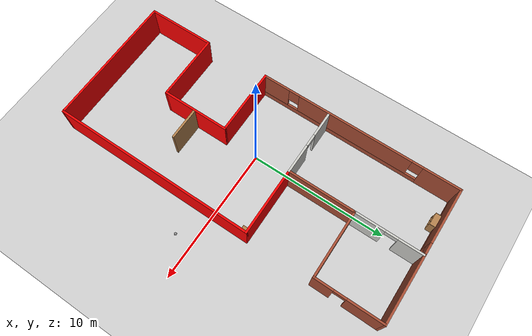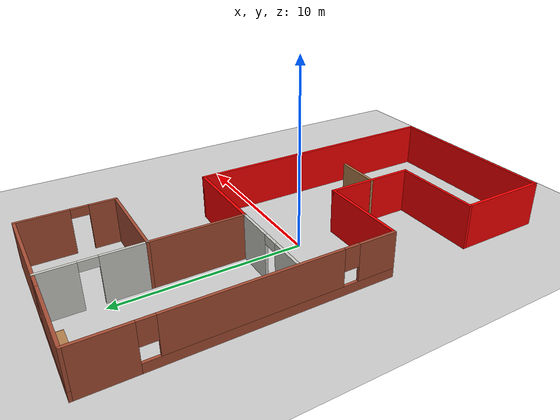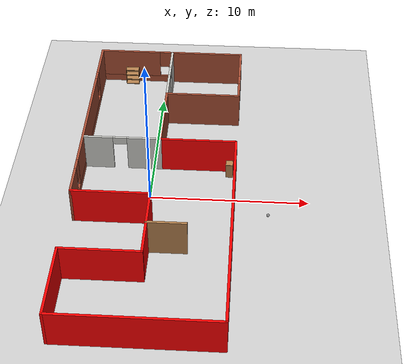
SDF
<sdf version="1.6">
 <world name="default">
  <plugin name="hello" filename="libhello.so"/>
  <light name="sun" type="directional">
   <pose>0 0 10 0 -0 0</pose>
   <diffuse>0.8 0.8 0.8 1</diffuse>
   <specular>0.1 0.1 0.1 1</specular>
   <attenuation>
    <range>1000</range>
    <constant>0.9</constant>
    <linear>0.01</linear>
    <quadratic>0.001</quadratic>
   </attenuation>
   <direction>-0.5 0.5 -1</direction>
  </light>
  <model name="ground_plane">
   <static>1</static>
   <link name="link">
    <collision name="collision">
     <geometry><plane><normal>0 0 1</normal><size>100 100</size></plane></geometry>
     <surface><friction><ode><mu>100</mu><mu2>50</mu2></ode></friction></surface>
    </collision>
    <visual name="visual">
     <cast_shadows>0</cast_shadows>
     <geometry><plane><normal>0 0 1</normal><size>100 100</size></plane></geometry>
     <material>
      <script><uri>file://media/materials/scripts/gazebo.material</uri><name>Gazebo/Grey</name></script>
     </material>
    </visual>
   </link>
  </model>
  <gravity>0 0 -9.8</gravity>
  <magnetic_field>6e-06 2.3e-05 -4.2e-05</magnetic_field>
  <atmosphere type="adiabatic"/>
  <physics name="default_physics" default="0" type="ode">
   <max_step_size>0.001</max_step_size>
   <real_time_factor>1</real_time_factor>
   <real_time_update_rate>1000</real_time_update_rate>
  </physics>
  <scene><ambient>0.4 0.4 0.4 1</ambient><background>0.7 0.7 0.7 1</background><shadows>1</shadows></scene>
  <spherical_coordinates>
   <surface_model>EARTH_WGS84</surface_model>
   <latitude_deg>0</latitude_deg>
   <longitude_deg>0</longitude_deg>
   <elevation>0</elevation>
   <heading_deg>0</heading_deg>
  </spherical_coordinates>
  <model name="P1Building">
   <pose>0.35783 0.28156 0 0 -0 0</pose>
   <link name="Wall_14">
    <collision name="Wall_14_Collision">
     <geometry><box><size>5 0.15 2.5</size></box></geometry>
     <pose>0 0 1.25 0 -0 0</pose>
    </collision>
    <visual name="Wall_14_Visual">
     <pose>0 0 1.25 0 -0 0</pose>
     <geometry><box><size>5 0.15 2.5</size></box></geometry>
     <material>
      <script><uri>file://media/materials/scripts/gazebo.material</uri><name>Gazebo/Grey</name></script>
      <ambient>1 0 0 1</ambient>
     </material>
     <meta><layer>0</layer></meta>
    </visual>
    <pose>2.5 2.575 0 0 -0 0</pose>
   </link>
   <link name="Wall_2">
    <collision name="Wall_2_Collision">
     <geometry><box><size>5 0.15 2.5</size></box></geometry>
     <pose>0 0 1.25 0 -0 0</pose>
    </collision>
    <visual name="Wall_2_Visual">
     <pose>0 0 1.25 0 -0 0</pose>
     <geometry><box><size>5 0.15 2.5</size></box></geometry>
     <material>
      <script><uri>file://media/materials/scripts/gazebo.material</uri><name>Gazebo/Bricks</name></script>
      <ambient>1 1 1 1</ambient>
     </material>
     <meta><layer>0</layer></meta>
    </visual>
    <pose>2.5 7.425 0 0 -0 3.14159</pose>
   </link>
   <link name="Wall_47">
    <collision name="Wall_47_Collision">
     <geometry><box><size>15 0.15 2.5</size></box></geometry>
     <pose>0 0 1.25 0 -0 0</pose>
    </collision>
    <visual name="Wall_47_Visual">
     <pose>0 0 1.25 0 -0 0</pose>
     <geometry><box><size>15 0.15 2.5</size></box></geometry>
     <material>
      <script><uri>file://media/materials/scripts/gazebo.material</uri><name>Gazebo/Grey</name></script>
      <ambient>1 0 0 1</ambient>
     </material>
     <meta><layer>0</layer></meta>
    </visual>
    <pose>4.925 -4.85 0 0 0 -1.5708</pose>
   </link>
   <link name="Wall_49">
    <collision name="Wall_49_Collision">
     <geometry><box><size>10 0.15 2.5</size></box></geometry>
     <pose>0 0 1.25 0 -0 0</pose>
    </collision>
    <visual name="Wall_49_Visual">
     <pose>0 0 1.25 0 -0 0</pose>
     <geometry><box><size>10 0.15 2.5</size></box></geometry>
     <material>
      <script><uri>file://media/materials/scripts/gazebo.material</uri><name>Gazebo/Grey</name></script>
      <ambient>1 0 0 1</ambient>
     </material>
     <meta><layer>0</layer></meta>
    </visual>
    <pose>0 -12.275 0 0 -0 3.14159</pose>
   </link>
   <link name="Wall_57">
    <pose>4.925 9.85 0 0 -0 1.5708</pose>
    <visual name="Wall_57_Visual_0">
     <pose>-1.77155 0 1.25 0 -0 0</pose>
     <geometry><box><size>1.45691 0.15 2.5</size></box></geometry>
     <material>
      <script><uri>file://media/materials/scripts/gazebo.material</uri><name>Gazebo/Bricks</name></script>
      <ambient>1 1 1 1</ambient>
     </material>
     <meta><layer>0</layer></meta>
    </visual>
    <collision name="Wall_57_Collision_0">
     <geometry><box><size>1.45691 0.15 2.5</size></box></geometry>
     <pose>-1.77155 0 1.25 0 -0 0</pose>
    </collision>
    <visual name="Wall_57_Visual_1">
     <pose>1.17845 0 1.25 0 -0 0</pose>
     <geometry><box><size>2.64309 0.15 2.5</size></box></geometry>
     <material>
      <script><uri>file://media/materials/scripts/gazebo.material</uri><name>Gazebo/Bricks</name></script>
      <ambient>1 1 1 1</ambient>
     </material>
     <meta><layer>0</layer></meta>
    </visual>
    <collision name="Wall_57_Collision_1">
     <geometry><box><size>2.64309 0.15 2.5</size></box></geometry>
     <pose>1.17845 0 1.25 0 -0 0</pose>
    </collision>
    <visual name="Wall_57_Visual_2">
     <pose>-0.593093 0 2.25 0 -0 0</pose>
     <geometry><box><size>0.9 0.15 0.5</size></box></geometry>
     <material>
      <script><uri>file://media/materials/scripts/gazebo.material</uri><name>Gazebo/Bricks</name></script>
      <ambient>1 1 1 1</ambient>
     </material>
     <meta><layer>0</layer></meta>
    </visual>
    <collision name="Wall_57_Collision_2">
     <geometry><box><size>0.9 0.15 0.5</size></box></geometry>
     <pose>-0.593093 0 2.25 0 -0 0</pose>
    </collision>
   </link>
   <link name="Wall_59">
    <pose>0 12.275 0 0 -0 3.14159</pose>
    <visual name="Wall_59_Visual_0">
     <pose>-2.48916 0 1.25 0 -0 0</pose>
     <geometry><box><size>5.02167 0.15 2.5</size></box></geometry>
     <material>
      <script><uri>file://media/materials/scripts/gazebo.material</uri><name>Gazebo/Bricks</name></script>
      <ambient>1 1 1 1</ambient>
     </material>
     <meta><layer>0</layer></meta>
    </visual>
    <collision name="Wall_59_Collision_0">
     <geometry><box><size>5.02167 0.15 2.5</size></box></geometry>
     <pose>-2.48916 0 1.25 0 -0 0</pose>
    </collision>
    <visual name="Wall_59_Visual_1">
     <pose>2.51084 0 0.25 0 -0 0</pose>
     <geometry><box><size>4.97833 0.15 0.5</size></box></geometry>
     <material>
      <script><uri>file://media/materials/scripts/gazebo.material</uri><name>Gazebo/Bricks</name></script>
      <ambient>1 1 1 1</ambient>
     </material>
     <meta><layer>0</layer></meta>
    </visual>
    <collision name="Wall_59_Collision_1">
     <geometry><box><size>4.97833 0.15 0.5</size></box></geometry>
     <pose>2.51084 0 0.25 0 -0 0</pose>
    </collision>
    <visual name="Wall_59_Visual_2">
     <pose>2.91084 0 1.5 0 -0 0</pose>
     <geometry><box><size>4.17833 0.15 2</size></box></geometry>
     <material>
      <script><uri>file://media/materials/scripts/gazebo.material</uri><name>Gazebo/Bricks</name></script>
      <ambient>1 1 1 1</ambient>
     </material>
     <meta><layer>0</layer></meta>
    </visual>
    <collision name="Wall_59_Collision_2">
     <geometry><box><size>4.17833 0.15 2</size></box></geometry>
     <pose>2.91084 0 1.5 0 -0 0</pose>
    </collision>
    <visual name="Wall_59_Visual_3">
     <pose>0.421672 0 1.9 0 -0 0</pose>
     <geometry><box><size>0.8 0.15 1.2</size></box></geometry>
     <material>
      <script><uri>file://media/materials/scripts/gazebo.material</uri><name>Gazebo/Bricks</name></script>
      <ambient>1 1 1 1</ambient>
     </material>
     <meta><layer>0</layer></meta>
    </visual>
    <collision name="Wall_59_Collision_3">
     <geometry><box><size>0.8 0.15 1.2</size></box></geometry>
     <pose>0.421672 0 1.9 0 -0 0</pose>
    </collision>
   </link>
   <link name="Wall_6">
    <collision name="Wall_6_Collision">
     <geometry><box><size>5 0.15 2.5</size></box></geometry>
     <pose>0 0 1.25 0 -0 0</pose>
    </collision>
    <visual name="Wall_6_Visual">
     <pose>0 0 1.25 0 -0 0</pose>
     <geometry><box><size>5 0.15 2.5</size></box></geometry>
     <material>
      <script><uri>file://media/materials/scripts/gazebo.material</uri><name>Gazebo/Bricks</name></script>
      <ambient>1 1 1 1</ambient>
     </material>
     <meta><layer>0</layer></meta>
    </visual>
    <pose>0.075 5 0 0 0 -1.5708</pose>
   </link>
   <link name="Wall_60">
    <pose>-4.925 4.85 0 0 0 -1.5708</pose>
    <visual name="Wall_60_Visual_0">
     <pose>-6.12564 0 1.25 0 -0 0</pose>
     <geometry><box><size>2.74872 0.15 2.5</size></box></geometry>
     <material>
      <script><uri>file://media/materials/scripts/gazebo.material</uri><name>Gazebo/Bricks</name></script>
      <ambient>1 0 0 1</ambient>
     </material>
     <meta><layer>0</layer></meta>
    </visual>
    <collision name="Wall_60_Collision_0">
     <geometry><box><size>2.74872 0.15 2.5</size></box></geometry>
     <pose>-6.12564 0 1.25 0 -0 0</pose>
    </collision>
    <visual name="Wall_60_Visual_1">
     <pose>1.37436 0 0.25 0 -0 0</pose>
     <geometry><box><size>12.2513 0.15 0.5</size></box></geometry>
     <material>
      <script><uri>file://media/materials/scripts/gazebo.material</uri><name>Gazebo/Bricks</name></script>
      <ambient>1 0 0 1</ambient>
     </material>
     <meta><layer>0</layer></meta>
    </visual>
    <collision name="Wall_60_Collision_1">
     <geometry><box><size>12.2513 0.15 0.5</size></box></geometry>
     <pose>1.37436 0 0.25 0 -0 0</pose>
    </collision>
    <visual name="Wall_60_Visual_2">
     <pose>0.338827 0 1.5 0 -0 0</pose>
     <geometry><box><size>8.58021 0.15 2</size></box></geometry>
     <material>
      <script><uri>file://media/materials/scripts/gazebo.material</uri><name>Gazebo/Bricks</name></script>
      <ambient>1 0 0 1</ambient>
     </material>
     <meta><layer>0</layer></meta>
    </visual>
    <collision name="Wall_60_Collision_2">
     <geometry><box><size>8.58021 0.15 2</size></box></geometry>
     <pose>0.338827 0 1.5 0 -0 0</pose>
    </collision>
    <visual name="Wall_60_Visual_3">
     <pose>6.46447 0 1.5 0 -0 0</pose>
     <geometry><box><size>2.07107 0.15 2</size></box></geometry>
     <material>
      <script><uri>file://media/materials/scripts/gazebo.material</uri><name>Gazebo/Bricks</name></script>
      <ambient>1 0 0 1</ambient>
     </material>
     <meta><layer>0</layer></meta>
    </visual>
    <collision name="Wall_60_Collision_3">
     <geometry><box><size>2.07107 0.15 2</size></box></geometry>
     <pose>6.46447 0 1.5 0 -0 0</pose>
    </collision>
    <visual name="Wall_60_Visual_4">
     <pose>-4.35128 0 1.9 0 -0 0</pose>
     <geometry><box><size>0.8 0.15 1.2</size></box></geometry>
     <material>
      <script><uri>file://media/materials/scripts/gazebo.material</uri><name>Gazebo/Bricks</name></script>
      <ambient>1 0 0 1</ambient>
     </material>
     <meta><layer>0</layer></meta>
    </visual>
    <collision name="Wall_60_Collision_4">
     <geometry><box><size>0.8 0.15 1.2</size></box></geometry>
     <pose>-4.35128 0 1.9 0 -0 0</pose>
    </collision>
    <visual name="Wall_60_Visual_5">
     <pose>5.02893 0 1.9 0 -0 0</pose>
     <geometry><box><size>0.8 0.15 1.2</size></box></geometry>
     <material>
      <script><uri>file://media/materials/scripts/gazebo.material</uri><name>Gazebo/Bricks</name></script>
      <ambient>1 0 0 1</ambient>
     </material>
     <meta><layer>0</layer></meta>
    </visual>
    <collision name="Wall_60_Collision_5">
     <geometry><box><size>0.8 0.15 1.2</size></box></geometry>
     <pose>5.02893 0 1.9 0 -0 0</pose>
    </collision>
   </link>
   <link name="Wall_63">
    <collision name="Wall_63_Collision">
     <geometry><box><size>5 0.15 2.5</size></box></geometry>
     <pose>0 0 1.25 0 -0 0</pose>
    </collision>
    <visual name="Wall_63_Visual">
     <pose>0 0 1.25 0 -0 0</pose>
     <geometry><box><size>5 0.15 2.5</size></box></geometry>
     <material>
      <script><uri>file://media/materials/scripts/gazebo.material</uri><name>Gazebo/Grey</name></script>
      <ambient>1 0 0 1</ambient>
     </material>
     <meta><layer>0</layer></meta>
    </visual>
    <pose>-2.5 -2.575 0 0 -0 0</pose>
   </link>
   <link name="Wall_65">
    <collision name="Wall_65_Collision">
     <geometry><box><size>5 0.15 2.5</size></box></geometry>
     <pose>0 0 1.25 0 -0 0</pose>
    </collision>
    <visual name="Wall_65_Visual">
     <pose>0 0 1.25 0 -0 0</pose>
     <geometry><box><size>5 0.15 2.5</size></box></geometry>
     <material>
      <script><uri>file://media/materials/scripts/gazebo.material</uri><name>Gazebo/Grey</name></script>
      <ambient>1 0 0 1</ambient>
     </material>
     <meta><layer>0</layer></meta>
    </visual>
    <pose>-0.075 -5 0 0 0 -1.5708</pose>
   </link>
   <link name="Wall_71">
    <collision name="Wall_71_Collision">
     <geometry><box><size>5 0.15 2.5</size></box></geometry>
     <pose>0 0 1.25 0 -0 0</pose>
    </collision>
    <visual name="Wall_71_Visual">
     <pose>0 0 1.25 0 -0 0</pose>
     <geometry><box><size>5 0.15 2.5</size></box></geometry>
     <material>
      <script><uri>file://media/materials/scripts/gazebo.material</uri><name>Gazebo/Grey</name></script>
      <ambient>1 0 0 1</ambient>
     </material>
     <meta><layer>0</layer></meta>
    </visual>
    <pose>-2.5 -7.425 0 0 -0 3.14159</pose>
   </link>
   <link name="Wall_72">
    <collision name="Wall_72_Collision">
     <geometry><box><size>5 0.15 2.5</size></box></geometry>
     <pose>0 0 1.25 0 -0 0</pose>
    </collision>
    <visual name="Wall_72_Visual">
     <pose>0 0 1.25 0 -0 0</pose>
     <geometry><box><size>5 0.15 2.5</size></box></geometry>
     <material>
      <script><uri>file://media/materials/scripts/gazebo.material</uri><name>Gazebo/Grey</name></script>
      <ambient>1 0 0 1</ambient>
     </material>
     <meta><layer>0</layer></meta>
    </visual>
    <pose>-4.925 -9.85 0 0 0 -1.5708</pose>
   </link>
   <link name="Wall_74">
    <pose>0.075 9.85 0 0 -0 1.5708</pose>
    <visual name="Wall_74_Visual_0">
     <pose>-1.37739 0 1.25 0 -0 0</pose>
     <geometry><box><size>2.24523 0.15 2.5</size></box></geometry>
     <material>
      <script><uri>file://media/materials/scripts/gazebo.material</uri><name>Gazebo/CeilingTiled</name></script>
      <ambient>1 1 1 1</ambient>
     </material>
     <meta><layer>0</layer></meta>
    </visual>
    <collision name="Wall_74_Collision_0">
     <geometry><box><size>2.24523 0.15 2.5</size></box></geometry>
     <pose>-1.37739 0 1.25 0 -0 0</pose>
    </collision>
    <visual name="Wall_74_Visual_1">
     <pose>1.57261 0 1.25 0 -0 0</pose>
     <geometry><box><size>1.85477 0.15 2.5</size></box></geometry>
     <material>
      <script><uri>file://media/materials/scripts/gazebo.material</uri><name>Gazebo/CeilingTiled</name></script>
      <ambient>1 1 1 1</ambient>
     </material>
     <meta><layer>0</layer></meta>
    </visual>
    <collision name="Wall_74_Collision_1">
     <geometry><box><size>1.85477 0.15 2.5</size></box></geometry>
     <pose>1.57261 0 1.25 0 -0 0</pose>
    </collision>
    <visual name="Wall_74_Visual_2">
     <pose>0.195227 0 2.25 0 -0 0</pose>
     <geometry><box><size>0.9 0.15 0.5</size></box></geometry>
     <material>
      <script><uri>file://media/materials/scripts/gazebo.material</uri><name>Gazebo/CeilingTiled</name></script>
      <ambient>1 1 1 1</ambient>
     </material>
     <meta><layer>0</layer></meta>
    </visual>
    <collision name="Wall_74_Collision_2">
     <geometry><box><size>0.9 0.15 0.5</size></box></geometry>
     <pose>0.195227 0 2.25 0 -0 0</pose>
    </collision>
   </link>
   <link name="Wall_80">
    <pose>-2.35 2.575 0 0 -0 3.14159</pose>
    <visual name="Wall_80_Visual_0">
     <pose>-1.38194 0 1.25 0 -0 0</pose>
     <geometry><box><size>2.23611 0.15 2.5</size></box></geometry>
     <material>
      <script><uri>file://media/materials/scripts/gazebo.material</uri><name>Gazebo/CeilingTiled</name></script>
      <ambient>1 1 1 1</ambient>
     </material>
     <meta><layer>0</layer></meta>
    </visual>
    <collision name="Wall_80_Collision_0">
     <geometry><box><size>2.23611 0.15 2.5</size></box></geometry>
     <pose>-1.38194 0 1.25 0 -0 0</pose>
    </collision>
    <visual name="Wall_80_Visual_1">
     <pose>1.56806 0 1.25 0 -0 0</pose>
     <geometry><box><size>1.86389 0.15 2.5</size></box></geometry>
     <material>
      <script><uri>file://media/materials/scripts/gazebo.material</uri><name>Gazebo/CeilingTiled</name></script>
      <ambient>1 1 1 1</ambient>
     </material>
     <meta><layer>0</layer></meta>
    </visual>
    <collision name="Wall_80_Collision_1">
     <geometry><box><size>1.86389 0.15 2.5</size></box></geometry>
     <pose>1.56806 0 1.25 0 -0 0</pose>
    </collision>
    <visual name="Wall_80_Visual_2">
     <pose>0.186114 0 2.25 0 -0 0</pose>
     <geometry><box><size>0.9 0.15 0.5</size></box></geometry>
     <material>
      <script><uri>file://media/materials/scripts/gazebo.material</uri><name>Gazebo/CeilingTiled</name></script>
      <ambient>1 1 1 1</ambient>
     </material>
     <meta><layer>0</layer></meta>
    </visual>
    <collision name="Wall_80_Collision_2">
     <geometry><box><size>0.9 0.15 0.5</size></box></geometry>
     <pose>0.186114 0 2.25 0 -0 0</pose>
    </collision>
   </link>
   <link name="Wall_82">
    <collision name="Wall_82_Collision">
     <geometry><box><size>2.5 0.15 2.5</size></box></geometry>
     <pose>0 0 1.25 0 -0 0</pose>
    </collision>
    <visual name="Wall_82_Visual">
     <pose>0 0 1.25 0 -0 0</pose>
     <geometry><box><size>2.5 0.15 2.5</size></box></geometry>
     <material>
      <script><uri>file://media/materials/scripts/gazebo.material</uri><name>Gazebo/Wood</name></script>
      <ambient>1 1 1 1</ambient>
     </material>
     <meta><layer>0</layer></meta>
    </visual>
    <pose>1.09111 -5.02696 0 0 -0 0</pose>
   </link>
   <static>1</static>
  </model>
  <model name="cabinet">
   <static>1</static>
   <link name="cabinet_bottom_plate">
    <inertial>
     <pose>0 0 -1 0 -0 0</pose>
     <inertia><ixx>2.05</ixx><ixy>0</ixy><ixz>0</ixz><iyy>2.05</iyy><iyz>0</iyz><izz>2.05</izz></inertia>
     <mass>25</mass>
    </inertial>
    <collision name="cabinet_bottom_plate_geom">
     <pose>0 0 0.01 0 -0 0</pose>
     <geometry><box><size>0.45 0.45 0.02</size></box></geometry>
    </collision>
    <visual name="cabinet_bottom_plate_geom_visual">
     <pose>0 0 0.01 0 -0 0</pose>
     <geometry><box><size>0.45 0.45 0.02</size></box></geometry>
     <material>
      <script><uri>file://media/materials/scripts/gazebo.material</uri><name>Gazebo/Wood</name></script>
     </material>
    </visual>
    <collision name="cabinet_bottom_plate_geom_cabinet_back_plate">
     <pose>0.235 0 0.51 0 -0 0</pose>
     <geometry><box><size>0.02 0.45 1.02</size></box></geometry>
    </collision>
    <visual name="cabinet_bottom_plate_geom_cabinet_back_plate_visual">
     <pose>0.235 0 0.51 0 -0 0</pose>
     <geometry><box><size>0.02 0.45 1.02</size></box></geometry>
     <material>
      <script><uri>file://media/materials/scripts/gazebo.material</uri><name>Gazebo/Wood</name></script>
     </material>
    </visual>
    <collision name="cabinet_bottom_plate_geom_cabinet_left_plate">
     <pose>0 0.235 0.51 0 -0 0</pose>
     <geometry><box><size>0.45 0.02 1.02</size></box></geometry>
    </collision>
    <visual name="cabinet_bottom_plate_geom_cabinet_left_plate_visual">
     <pose>0 0.235 0.51 0 -0 0</pose>
     <geometry><box><size>0.45 0.02 1.02</size></box></geometry>
     <material>
      <script><uri>file://media/materials/scripts/gazebo.material</uri><name>Gazebo/Wood</name></script>
     </material>
    </visual>
    <collision name="cabinet_bottom_plate_geom_cabinet_middle_plate">
     <pose>0 0 0.51 0 -0 0</pose>
     <geometry><box><size>0.45 0.45 0.02</size></box></geometry>
    </collision>
    <visual name="cabinet_bottom_plate_geom_cabinet_middle_plate_visual">
     <pose>0 0 0.51 0 -0 0</pose>
     <geometry><box><size>0.45 0.45 0.02</size></box></geometry>
     <material>
      <script><uri>file://media/materials/scripts/gazebo.material</uri><name>Gazebo/Wood</name></script>
     </material>
    </visual>
    <collision name="cabinet_bottom_plate_geom_cabinet_right_plate">
     <pose>0 -0.235 0.51 0 -0 0</pose>
     <geometry><box><size>0.45 0.02 1.02</size></box></geometry>
    </collision>
    <visual name="cabinet_bottom_plate_geom_cabinet_right_plate_visual">
     <pose>0 -0.235 0.51 0 -0 0</pose>
     <geometry><box><size>0.45 0.02 1.02</size></box></geometry>
     <material>
      <script><uri>file://media/materials/scripts/gazebo.material</uri><name>Gazebo/Wood</name></script>
     </material>
    </visual>
    <collision name="cabinet_bottom_plate_geom_cabinet_top_plate">
     <pose>0 0 1.01 0 -0 0</pose>
     <geometry><box><size>0.45 0.45 0.02</size></box></geometry>
    </collision>
    <visual name="cabinet_bottom_plate_geom_cabinet_top_plate_visual">
     <pose>0 0 1.01 0 -0 0</pose>
     <geometry><box><size>0.45 0.45 0.02</size></box></geometry>
     <material>
      <script><uri>file://media/materials/scripts/gazebo.material</uri><name>Gazebo/Wood</name></script>
     </material>
    </visual>
   </link>
   <pose>4.89886 2.45703 0 0 -0 0</pose>
  </model>
  <model name="bookshelf">
   <static>1</static>
   <link name="link">
    <inertial><mass>1</mass></inertial>
    <collision name="back">
     <pose>0 0.005 0.6 0 -0 0</pose>
     <geometry><box><size>0.9 0.01 1.2</size></box></geometry>
    </collision>
    <visual name="visual1">
     <pose>0 0.005 0.6 0 -0 0</pose>
     <geometry><box><size>0.9 0.01 1.2</size></box></geometry>
     <material>
      <script><uri>file://media/materials/scripts/gazebo.material</uri><name>Gazebo/Wood</name></script>
     </material>
    </visual>
    <collision name="left_side">
     <pose>0.45 -0.195 0.6 0 -0 0</pose>
     <geometry><box><size>0.02 0.4 1.2</size></box></geometry>
    </collision>
    <visual name="visual2">
     <pose>0.45 -0.195 0.6 0 -0 0</pose>
     <geometry><box><size>0.02 0.4 1.2</size></box></geometry>
     <material>
      <script><uri>file://media/materials/scripts/gazebo.material</uri><name>Gazebo/Wood</name></script>
     </material>
    </visual>
    <collision name="right_side">
     <pose>-0.45 -0.195 0.6 0 -0 0</pose>
     <geometry><box><size>0.02 0.4 1.2</size></box></geometry>
    </collision>
    <visual name="visual3">
     <pose>-0.45 -0.195 0.6 0 -0 0</pose>
     <geometry><box><size>0.02 0.4 1.2</size></box></geometry>
     <material>
      <script><uri>file://media/materials/scripts/gazebo.material</uri><name>Gazebo/Wood</name></script>
     </material>
    </visual>
    <collision name="bottom">
     <pose>0 -0.195 0.03 0 -0 0</pose>
     <geometry><box><size>0.88 0.4 0.06</size></box></geometry>
    </collision>
    <visual name="visual4">
     <pose>0 -0.195 0.03 0 -0 0</pose>
     <geometry><box><size>0.88 0.4 0.06</size></box></geometry>
     <material>
      <script><uri>file://media/materials/scripts/gazebo.material</uri><name>Gazebo/Wood</name></script>
     </material>
    </visual>
    <collision name="top">
     <pose>0 -0.195 1.19 0 -0 0</pose>
     <geometry><box><size>0.88 0.4 0.02</size></box></geometry>
    </collision>
    <visual name="visual5">
     <pose>0 -0.195 1.19 0 -0 0</pose>
     <geometry><box><size>0.88 0.4 0.02</size></box></geometry>
     <material>
      <script><uri>file://media/materials/scripts/gazebo.material</uri><name>Gazebo/Wood</name></script>
     </material>
    </visual>
    <collision name="low_shelf">
     <pose>0 -0.195 0.43 0 -0 0</pose>
     <geometry><box><size>0.88 0.4 0.02</size></box></geometry>
    </collision>
    <visual name="visual6">
     <pose>0 -0.195 0.43 0 -0 0</pose>
     <geometry><box><size>0.88 0.4 0.02</size></box></geometry>
     <material>
      <script><uri>file://media/materials/scripts/gazebo.material</uri><name>Gazebo/Wood</name></script>
     </material>
    </visual>
    <collision name="high_shelf">
     <pose>0 -0.195 0.8 0 -0 0</pose>
     <geometry><box><size>0.88 0.4 0.02</size></box></geometry>
    </collision>
    <visual name="visual7">
     <pose>0 -0.195 0.8 0 -0 0</pose>
     <geometry><box><size>0.88 0.4 0.02</size></box></geometry>
     <material>
      <script><uri>file://media/materials/scripts/gazebo.material</uri><name>Gazebo/Wood</name></script>
     </material>
    </visual>
   </link>
   <pose>-2.45109 12.4419 0 0 -0 0</pose>
  </model>
  <model name="my_ball">
   <link name="link_0">
    <inertial>
     <mass>1</mass>
     <inertia><ixx>0.1</ixx><ixy>0</ixy><ixz>0</ixz><iyy>0.1</iyy><iyz>0</iyz><izz>0.1</izz></inertia>
    </inertial>
    <visual name="visual">
     <geometry><sphere><radius>0.1</radius></sphere></geometry>
     <material>
      <lighting>1</lighting>
      <script><uri>file://media/materials/scripts/gazebo.material</uri><name>Gazebo/Grey</name></script>
      <shader type="pixel"><normal_map>__default__</normal_map></shader>
      <ambient>1 1 1 1</ambient>
      <diffuse>1 1 1 1</diffuse>
      <specular>1 1 1 1</specular>
      <emissive>1 1 1 1</emissive>
     </material>
    </visual>
    <collision name="collision">
     <geometry><sphere><radius>0.1</radius></sphere></geometry>
     <surface>
      <friction>
       <ode><mu>1</mu><mu2>1</mu2><fdir1>0 0 0</fdir1><slip1>0</slip1><slip2>0</slip2></ode>
       <torsional>
        <coefficient>1</coefficient>
        <patch_radius>0</patch_radius>
        <surface_radius>0</surface_radius>
        <use_patch_radius>1</use_patch_radius>
        <ode><slip>0</slip></ode>
       </torsional>
      </friction>
      <bounce><restitution_coefficient>0</restitution_coefficient><threshold>1e+06</threshold></bounce>
      <contact>
       <collide_without_contact>0</collide_without_contact>
       <collide_without_contact_bitmask>1</collide_without_contact_bitmask>
       <collide_bitmask>1</collide_bitmask>
       <ode>
        <soft_cfm>0</soft_cfm>
        <soft_erp>0.2</soft_erp>
        <kp>1e+13</kp>
        <kd>1</kd>
        <max_vel>0.01</max_vel>
        <min_depth>0</min_depth>
       </ode>
       <bullet>
        <split_impulse>1</split_impulse>
        <split_impulse_penetration_threshold>-0.01</split_impulse_penetration_threshold>
        <soft_cfm>0</soft_cfm>
        <soft_erp>0.2</soft_erp>
        <kp>1e+13</kp>
        <kd>1</kd>
       </bullet>
      </contact>
     </surface>
    </collision>
   </link>
   <static>0</static>
   <pose>7.45752 -1.30981 0.1 0 -0 0</pose>
  </model>
 </world>
</sdf>
